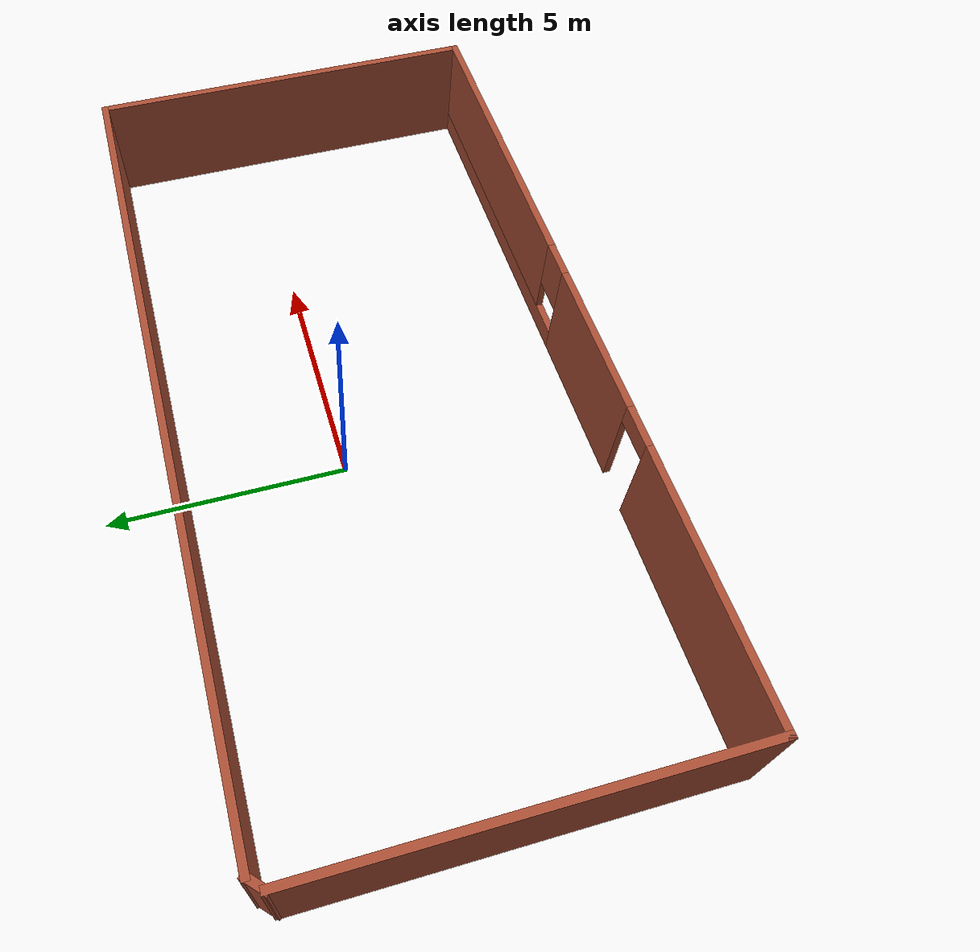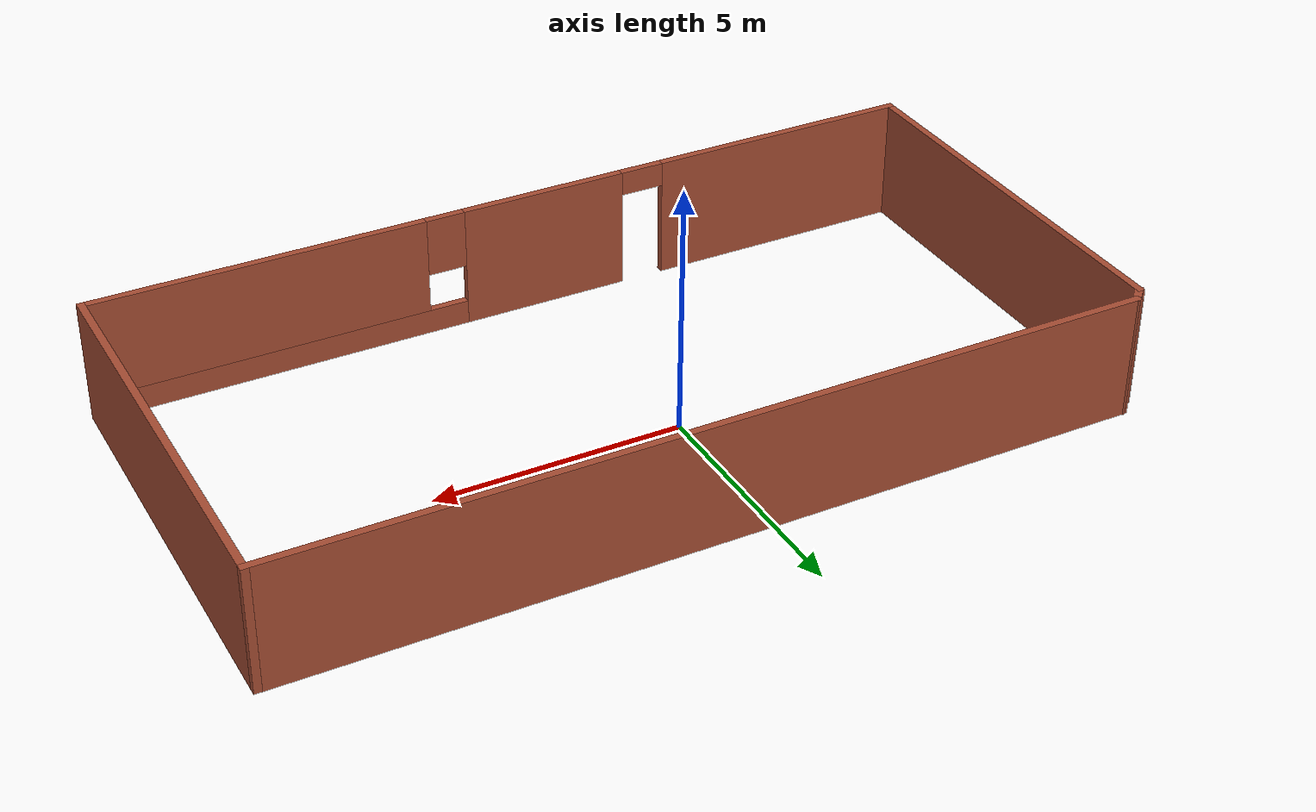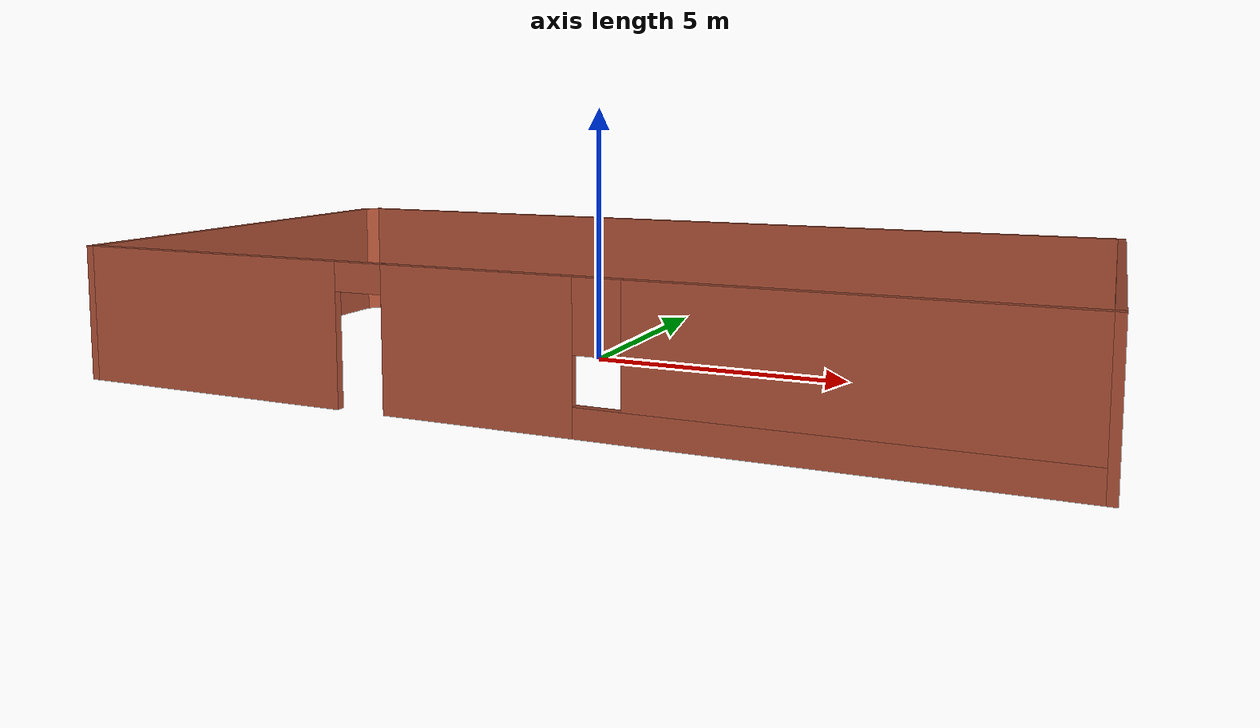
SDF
<?xml version='1.0'?>
<sdf version='1.6'>
  <model name='trial_1'>
    <pose frame=''>0.827196 -0.931458 0 0 -0 0</pose>
    <link name='Wall_0'>
      <collision name='Wall_0_Collision'>
        <geometry>
          <box>
            <size>8.5 0.15 2.5</size>
          </box>
        </geometry>
        <pose frame=''>0 0 1.25 0 -0 0</pose>
      </collision>
      <visual name='Wall_0_Visual'>
        <pose frame=''>0 0 1.25 0 -0 0</pose>
        <geometry>
          <box>
            <size>8.5 0.15 2.5</size>
          </box>
        </geometry>
        <material>
          <script>
            <uri>file://media/materials/scripts/gazebo.material</uri>
            <name>Gazebo/Bricks</name>
          </script>
          <ambient>1 1 1 1</ambient>
        </material>
        <meta>
          <layer>0</layer>
        </meta>
      </visual>
      <pose frame=''>-8.65947 -0.140533 0 0 -0 -1.5708</pose>
    </link>
    <link name='Wall_1'>
      <pose frame=''>0.015532 -4.31553 0 0 -0 0</pose>
      <visual name='Wall_1_Visual_0'>
        <pose frame=''>-5.98554 0 1.25 0 -0 0</pose>
        <geometry>
          <box>
            <size>5.52891 0.15 2.5</size>
          </box>
        </geometry>
        <material>
          <script>
            <uri>file://media/materials/scripts/gazebo.material</uri>
            <name>Gazebo/Bricks</name>
          </script>
          <ambient>1 1 1 1</ambient>
        </material>
        <meta>
          <layer>0</layer>
        </meta>
      </visual>
      <collision name='Wall_1_Collision_0'>
        <geometry>
          <box>
            <size>5.52891 0.15 2.5</size>
          </box>
        </geometry>
        <pose frame=''>-5.98554 0 1.25 0 -0 0</pose>
      </collision>
      <visual name='Wall_1_Visual_1'>
        <pose frame=''>-0.60477 0 1.25 0 -0 0</pose>
        <geometry>
          <box>
            <size>3.43263 0.15 2.5</size>
          </box>
        </geometry>
        <material>
          <script>
            <uri>file://media/materials/scripts/gazebo.material</uri>
            <name>Gazebo/Bricks</name>
          </script>
          <ambient>1 1 1 1</ambient>
        </material>
        <meta>
          <layer>0</layer>
        </meta>
      </visual>
      <collision name='Wall_1_Collision_1'>
        <geometry>
          <box>
            <size>3.43263 0.15 2.5</size>
          </box>
        </geometry>
        <pose frame=''>-0.60477 0 1.25 0 -0 0</pose>
      </collision>
      <visual name='Wall_1_Visual_2'>
        <pose frame=''>4.93077 0 0.25 0 -0 0</pose>
        <geometry>
          <box>
            <size>7.63845 0.15 0.5</size>
          </box>
        </geometry>
        <material>
          <script>
            <uri>file://media/materials/scripts/gazebo.material</uri>
            <name>Gazebo/Bricks</name>
          </script>
          <ambient>1 1 1 1</ambient>
        </material>
        <meta>
          <layer>0</layer>
        </meta>
      </visual>
      <collision name='Wall_1_Collision_2'>
        <geometry>
          <box>
            <size>7.63845 0.15 0.5</size>
          </box>
        </geometry>
        <pose frame=''>4.93077 0 0.25 0 -0 0</pose>
      </collision>
      <visual name='Wall_1_Visual_3'>
        <pose frame=''>5.33077 0 1.5 0 -0 0</pose>
        <geometry>
          <box>
            <size>6.83845 0.15 2</size>
          </box>
        </geometry>
        <material>
          <script>
            <uri>file://media/materials/scripts/gazebo.material</uri>
            <name>Gazebo/Bricks</name>
          </script>
          <ambient>1 1 1 1</ambient>
        </material>
        <meta>
          <layer>0</layer>
        </meta>
      </visual>
      <collision name='Wall_1_Collision_3'>
        <geometry>
          <box>
            <size>6.83845 0.15 2</size>
          </box>
        </geometry>
        <pose frame=''>5.33077 0 1.5 0 -0 0</pose>
      </collision>
      <visual name='Wall_1_Visual_4'>
        <pose frame=''>1.51155 0 1.9 0 -0 0</pose>
        <geometry>
          <box>
            <size>0.8 0.15 1.2</size>
          </box>
        </geometry>
        <material>
          <script>
            <uri>file://media/materials/scripts/gazebo.material</uri>
            <name>Gazebo/Bricks</name>
          </script>
          <ambient>1 1 1 1</ambient>
        </material>
        <meta>
          <layer>0</layer>
        </meta>
      </visual>
      <collision name='Wall_1_Collision_4'>
        <geometry>
          <box>
            <size>0.8 0.15 1.2</size>
          </box>
        </geometry>
        <pose frame=''>1.51155 0 1.9 0 -0 0</pose>
      </collision>
      <visual name='Wall_1_Visual_5'>
        <pose frame=''>-2.77109 0 2.25 0 -0 0</pose>
        <geometry>
          <box>
            <size>0.9 0.15 0.5</size>
          </box>
        </geometry>
        <material>
          <script>
            <uri>file://media/materials/scripts/gazebo.material</uri>
            <name>Gazebo/Bricks</name>
          </script>
          <ambient>1 1 1 1</ambient>
        </material>
        <meta>
          <layer>0</layer>
        </meta>
      </visual>
      <collision name='Wall_1_Collision_5'>
        <geometry>
          <box>
            <size>0.9 0.15 0.5</size>
          </box>
        </geometry>
        <pose frame=''>-2.77109 0 2.25 0 -0 0</pose>
      </collision>
    </link>
    <link name='Wall_2'>
      <collision name='Wall_2_Collision'>
        <geometry>
          <box>
            <size>8.75 0.15 2.5</size>
          </box>
        </geometry>
        <pose frame=''>0 0 1.25 0 -0 0</pose>
      </collision>
      <visual name='Wall_2_Visual'>
        <pose frame=''>0 0 1.25 0 -0 0</pose>
        <geometry>
          <box>
            <size>8.75 0.15 2.5</size>
          </box>
        </geometry>
        <material>
          <script>
            <uri>file://media/materials/scripts/gazebo.material</uri>
            <name>Gazebo/Bricks</name>
          </script>
          <ambient>0.760784 0.662745 0.627451 1</ambient>
        </material>
        <meta>
          <layer>0</layer>
        </meta>
      </visual>
      <pose frame=''>8.69053 -0.015533 0 0 -0 1.5708</pose>
    </link>
    <link name='Wall_3'>
      <collision name='Wall_3_Collision'>
        <geometry>
          <box>
            <size>17.25 0.15 2.5</size>
          </box>
        </geometry>
        <pose frame=''>0 0 1.25 0 -0 0</pose>
      </collision>
      <visual name='Wall_3_Visual'>
        <pose frame=''>0 0 1.25 0 -0 0</pose>
        <geometry>
          <box>
            <size>17.25 0.15 2.5</size>
          </box>
        </geometry>
        <material>
          <script>
            <uri>file://media/materials/scripts/gazebo.material</uri>
            <name>Gazebo/Bricks</name>
          </script>
          <ambient>1 1 1 1</ambient>
        </material>
        <meta>
          <layer>0</layer>
        </meta>
      </visual>
      <pose frame=''>0.140532 4.28447 0 0 -0 3.14159</pose>
    </link>
    <link name='Wall_4'>
      <collision name='Wall_4_Collision'>
        <geometry>
          <box>
            <size>0.503553 0.15 2.5</size>
          </box>
        </geometry>
        <pose frame=''>0 0 1.25 0 -0 0</pose>
      </collision>
      <visual name='Wall_4_Visual'>
        <pose frame=''>0 0 1.25 0 -0 0</pose>
        <geometry>
          <box>
            <size>0.503553 0.15 2.5</size>
          </box>
        </geometry>
        <material>
          <script>
            <uri>file://media/materials/scripts/gazebo.material</uri>
            <name>Gazebo/Bricks</name>
          </script>
          <ambient>1 1 1 1</ambient>
        </material>
        <meta>
          <layer>0</layer>
        </meta>
      </visual>
      <pose frame=''>-8.53447 4.15947 0 0 -0 -2.35619</pose>
    </link>
    <static>1</static>
  </model>
</sdf>
